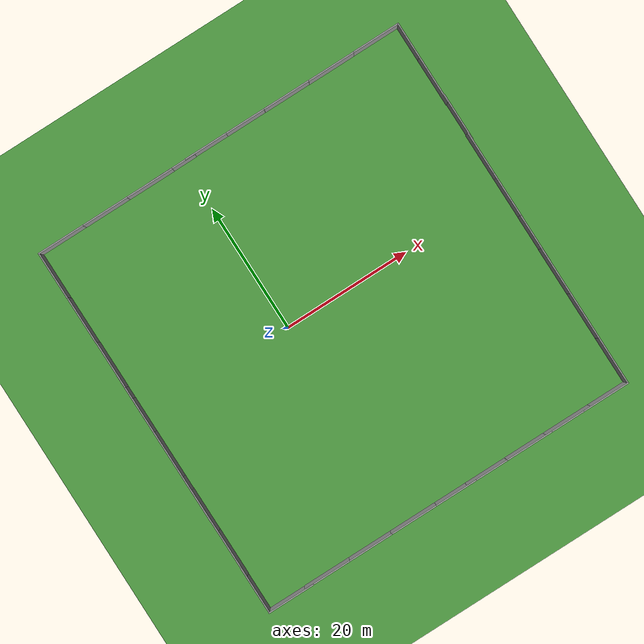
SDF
<sdf version="1.6">
 <world name="default">
  <light name="sun" type="directional">
   <pose>0 0 10 0 -0 0</pose>
   <diffuse>0.8 0.8 0.8 1</diffuse>
   <specular>0.2 0.2 0.2 1</specular>
   <attenuation>
    <range>1000</range>
    <constant>0.9</constant>
    <linear>0.01</linear>
    <quadratic>0.001</quadratic>
   </attenuation>
   <direction>-0.5 0.1 -0.9</direction>
  </light>
  <gravity>0 0 -9.8</gravity>
  <magnetic_field>6e-06 2.3e-05 -4.2e-05</magnetic_field>
  <atmosphere type="adiabatic"/>
  <physics name="default_physics" default="0" type="ode">
   <max_step_size>0.001</max_step_size>
   <real_time_factor>1</real_time_factor>
   <real_time_update_rate>1000</real_time_update_rate>
  </physics>
  <scene><ambient>0.4 0.4 0.4 1</ambient><background>0.7 0.7 0.7 1</background><shadows>1</shadows></scene>
  <spherical_coordinates>
   <surface_model>EARTH_WGS84</surface_model>
   <latitude_deg>0</latitude_deg>
   <longitude_deg>0</longitude_deg>
   <elevation>0</elevation>
   <heading_deg>0</heading_deg>
  </spherical_coordinates>
  <model name="vrc_driving_terrain">
   <static>1</static>
   <link name="grass_plane">
    <collision name="collision">
     <geometry><plane><normal>0 0 1</normal><size>60 60</size></plane></geometry>
     <surface><friction><ode><mu>0.5</mu><mu2>0.5</mu2></ode></friction></surface>
    </collision>
    <visual name="visual_0">
     <cast_shadows>0</cast_shadows>
     <geometry><plane><normal>0 0 1</normal><size>60 60</size></plane></geometry>
     <material>
      <script>
       <uri>model://forest/vrc_driving_terrain/materials/scripts</uri>
       <uri>model://forest/vrc_driving_terrain/materials/textures</uri>
       <name>vrc/grass</name>
      </script>
     </material>
    </visual>
   </link>
   <pose>6.27224 -2.36963 0 0 -0 0</pose>
  </model>
  <model name="grey_wall_clone_10_clone_clone_clone_11_clone_clone_6">
   <static>1</static>
   <link name="link">
    <pose>0 0 1.4 0 -0 0</pose>
    <collision name="collision"><geometry><box><size>7.5 0.2 2.8</size></box></geometry></collision>
    <visual name="visual">
     <cast_shadows>0</cast_shadows>
     <geometry><box><size>7.5 0.2 2.8</size></box></geometry>
     <material>
      <script>
       <uri>model://forest/grey_wall/materials/scripts</uri>
       <uri>model://forest/grey_wall/materials/textures</uri>
       <name>vrc/grey_wall</name>
      </script>
     </material>
    </visual>
   </link>
   <pose>-20.0689 -32.377 0 0 -0 0</pose>
  </model>
  <model name="grey_wall_clone_10_clone_clone_clone_11_clone_clone_7">
   <static>1</static>
   <link name="link">
    <pose>0 0 1.4 0 -0 0</pose>
    <collision name="collision"><geometry><box><size>7.5 0.2 2.8</size></box></geometry></collision>
    <visual name="visual">
     <cast_shadows>0</cast_shadows>
     <geometry><box><size>7.5 0.2 2.8</size></box></geometry>
     <material>
      <script>
       <uri>model://forest/grey_wall/materials/scripts</uri>
       <uri>model://forest/grey_wall/materials/textures</uri>
       <name>vrc/grey_wall</name>
      </script>
     </material>
    </visual>
   </link>
   <pose>-14.0469 -32.337 0 0 -0 0</pose>
  </model>
  <model name="grey_wall_clone_10_clone_clone_clone_11_clone_clone_8">
   <static>1</static>
   <link name="link">
    <pose>0 0 1.4 0 -0 0</pose>
    <collision name="collision"><geometry><box><size>7.5 0.2 2.8</size></box></geometry></collision>
    <visual name="visual">
     <cast_shadows>0</cast_shadows>
     <geometry><box><size>7.5 0.2 2.8</size></box></geometry>
     <material>
      <script>
       <uri>model://forest/grey_wall/materials/scripts</uri>
       <uri>model://forest/grey_wall/materials/textures</uri>
       <name>vrc/grey_wall</name>
      </script>
     </material>
    </visual>
   </link>
   <pose>-6.98097 -32.3403 0 0 -0 0</pose>
  </model>
  <model name="grey_wall_clone_10_clone_clone_clone_11_clone_clone_9">
   <static>1</static>
   <link name="link">
    <pose>0 0 1.4 0 -0 0</pose>
    <collision name="collision"><geometry><box><size>7.5 0.2 2.8</size></box></geometry></collision>
    <visual name="visual">
     <cast_shadows>0</cast_shadows>
     <geometry><box><size>7.5 0.2 2.8</size></box></geometry>
     <material>
      <script>
       <uri>model://forest/grey_wall/materials/scripts</uri>
       <uri>model://forest/grey_wall/materials/textures</uri>
       <name>vrc/grey_wall</name>
      </script>
     </material>
    </visual>
   </link>
   <pose>0.3838 -32.3377 0 0 -0 0</pose>
  </model>
  <model name="grey_wall_clone_10_clone_clone_clone_11_clone_clone_10">
   <static>1</static>
   <link name="link">
    <pose>0 0 1.4 0 -0 0</pose>
    <collision name="collision"><geometry><box><size>7.5 0.2 2.8</size></box></geometry></collision>
    <visual name="visual">
     <cast_shadows>0</cast_shadows>
     <geometry><box><size>7.5 0.2 2.8</size></box></geometry>
     <material>
      <script>
       <uri>model://forest/grey_wall/materials/scripts</uri>
       <uri>model://forest/grey_wall/materials/textures</uri>
       <name>vrc/grey_wall</name>
      </script>
     </material>
    </visual>
   </link>
   <pose>7.10117 -32.3402 0 0 -0 0</pose>
  </model>
  <model name="grey_wall_clone_10_clone_clone_clone_11_clone_clone_11">
   <static>1</static>
   <link name="link">
    <pose>0 0 1.4 0 -0 0</pose>
    <collision name="collision"><geometry><box><size>7.5 0.2 2.8</size></box></geometry></collision>
    <visual name="visual">
     <cast_shadows>0</cast_shadows>
     <geometry><box><size>7.5 0.2 2.8</size></box></geometry>
     <material>
      <script>
       <uri>model://forest/grey_wall/materials/scripts</uri>
       <uri>model://forest/grey_wall/materials/textures</uri>
       <name>vrc/grey_wall</name>
      </script>
     </material>
    </visual>
   </link>
   <pose>19.7031 -32.3238 0 0 -0 0</pose>
  </model>
  <model name="grey_wall_clone_10_clone_clone_clone_11_clone_clone_12">
   <static>1</static>
   <link name="link">
    <pose>0 0 1.4 0 -0 0</pose>
    <collision name="collision"><geometry><box><size>7.5 0.2 2.8</size></box></geometry></collision>
    <visual name="visual">
     <cast_shadows>0</cast_shadows>
     <geometry><box><size>7.5 0.2 2.8</size></box></geometry>
     <material>
      <script>
       <uri>model://forest/grey_wall/materials/scripts</uri>
       <uri>model://forest/grey_wall/materials/textures</uri>
       <name>vrc/grey_wall</name>
      </script>
     </material>
    </visual>
   </link>
   <pose>13.0436 -32.3322 0 0 -0 0</pose>
  </model>
  <model name="grey_wall_clone_10_clone_clone_clone_11_clone_clone_14">
   <static>1</static>
   <link name="link">
    <pose>0 0 1.4 0 -0 0</pose>
    <collision name="collision"><geometry><box><size>7.5 0.2 2.8</size></box></geometry></collision>
    <visual name="visual">
     <cast_shadows>0</cast_shadows>
     <geometry><box><size>7.5 0.2 2.8</size></box></geometry>
     <material>
      <script>
       <uri>model://forest/grey_wall/materials/scripts</uri>
       <uri>model://forest/grey_wall/materials/textures</uri>
       <name>vrc/grey_wall</name>
      </script>
     </material>
    </visual>
   </link>
   <pose>32.4753 -32.3237 0 0 -0 0</pose>
  </model>
  <model name="grey_wall_clone_10_clone_0_clone_4_clone">
   <static>1</static>
   <link name="link">
    <pose>0 0 1.4 0 -0 0</pose>
    <collision name="collision"><geometry><box><size>7.5 0.2 2.8</size></box></geometry></collision>
    <visual name="visual">
     <cast_shadows>0</cast_shadows>
     <geometry><box><size>7.5 0.2 2.8</size></box></geometry>
     <material>
      <script>
       <uri>model://forest/grey_wall/materials/scripts</uri>
       <uri>model://forest/grey_wall/materials/textures</uri>
       <name>vrc/grey_wall</name>
      </script>
     </material>
    </visual>
   </link>
   <pose>36.1029 -28.5226 0 0 0 -1.56932</pose>
  </model>
  <model name="grey_wall_clone_10_clone_0_clone_3_clone">
   <static>1</static>
   <link name="link">
    <pose>0 0 1.4 0 -0 0</pose>
    <collision name="collision"><geometry><box><size>7.5 0.2 2.8</size></box></geometry></collision>
    <visual name="visual">
     <cast_shadows>0</cast_shadows>
     <geometry><box><size>7.5 0.2 2.8</size></box></geometry>
     <material>
      <script>
       <uri>model://forest/grey_wall/materials/scripts</uri>
       <uri>model://forest/grey_wall/materials/textures</uri>
       <name>vrc/grey_wall</name>
      </script>
     </material>
    </visual>
   </link>
   <pose>36.1009 -21.0546 0 0 0 -1.56932</pose>
  </model>
  <model name="grey_wall_clone_10_clone_0_clone_2_clone">
   <static>1</static>
   <link name="link">
    <pose>0 0 1.4 0 -0 0</pose>
    <collision name="collision"><geometry><box><size>7.5 0.2 2.8</size></box></geometry></collision>
    <visual name="visual">
     <cast_shadows>0</cast_shadows>
     <geometry><box><size>7.5 0.2 2.8</size></box></geometry>
     <material>
      <script>
       <uri>model://forest/grey_wall/materials/scripts</uri>
       <uri>model://forest/grey_wall/materials/textures</uri>
       <name>vrc/grey_wall</name>
      </script>
     </material>
    </visual>
   </link>
   <pose>36.0909 -13.5753 0 0 0 -1.56932</pose>
  </model>
  <model name="grey_wall_clone_10_clone_0_clone_1_clone">
   <static>1</static>
   <link name="link">
    <pose>0 0 1.4 0 -0 0</pose>
    <collision name="collision"><geometry><box><size>7.5 0.2 2.8</size></box></geometry></collision>
    <visual name="visual">
     <cast_shadows>0</cast_shadows>
     <geometry><box><size>7.5 0.2 2.8</size></box></geometry>
     <material>
      <script>
       <uri>model://forest/grey_wall/materials/scripts</uri>
       <uri>model://forest/grey_wall/materials/textures</uri>
       <name>vrc/grey_wall</name>
      </script>
     </material>
    </visual>
   </link>
   <pose>36.1079 -8.10384 0 0 0 -1.56932</pose>
  </model>
  <model name="grey_wall_clone_10_clone_0_clone_0_clone">
   <static>1</static>
   <link name="link">
    <pose>0 0 1.4 0 -0 0</pose>
    <collision name="collision"><geometry><box><size>7.5 0.2 2.8</size></box></geometry></collision>
    <visual name="visual">
     <cast_shadows>0</cast_shadows>
     <geometry><box><size>7.5 0.2 2.8</size></box></geometry>
     <material>
      <script>
       <uri>model://forest/grey_wall/materials/scripts</uri>
       <uri>model://forest/grey_wall/materials/textures</uri>
       <name>vrc/grey_wall</name>
      </script>
     </material>
    </visual>
   </link>
   <pose>36.1171 -1.08216 0 0 0 -1.56932</pose>
  </model>
  <model name="grey_wall_clone_10_clone_0_clone_clone">
   <static>1</static>
   <link name="link">
    <pose>0 0 1.4 0 -0 0</pose>
    <collision name="collision"><geometry><box><size>7.5 0.2 2.8</size></box></geometry></collision>
    <visual name="visual">
     <cast_shadows>0</cast_shadows>
     <geometry><box><size>7.5 0.2 2.8</size></box></geometry>
     <material>
      <script>
       <uri>model://forest/grey_wall/materials/scripts</uri>
       <uri>model://forest/grey_wall/materials/textures</uri>
       <name>vrc/grey_wall</name>
      </script>
     </material>
    </visual>
   </link>
   <pose>36.1055 5.65363 0 0 0 -1.56932</pose>
  </model>
  <model name="grey_wall_clone_10_clone_0_clone_12">
   <static>1</static>
   <link name="link">
    <pose>0 0 1.4 0 -0 0</pose>
    <collision name="collision"><geometry><box><size>7.5 0.2 2.8</size></box></geometry></collision>
    <visual name="visual">
     <cast_shadows>0</cast_shadows>
     <geometry><box><size>7.5 0.2 2.8</size></box></geometry>
     <material>
      <script>
       <uri>model://forest/grey_wall/materials/scripts</uri>
       <uri>model://forest/grey_wall/materials/textures</uri>
       <name>vrc/grey_wall</name>
      </script>
     </material>
    </visual>
   </link>
   <pose>36.1794 12.0088 0 0 0 -1.56932</pose>
  </model>
  <model name="grey_wall_clone_10_clone_0_clone_13">
   <static>1</static>
   <link name="link">
    <pose>0 0 1.4 0 -0 0</pose>
    <collision name="collision"><geometry><box><size>7.5 0.2 2.8</size></box></geometry></collision>
    <visual name="visual">
     <cast_shadows>0</cast_shadows>
     <geometry><box><size>7.5 0.2 2.8</size></box></geometry>
     <material>
      <script>
       <uri>model://forest/grey_wall/materials/scripts</uri>
       <uri>model://forest/grey_wall/materials/textures</uri>
       <name>vrc/grey_wall</name>
      </script>
     </material>
    </visual>
   </link>
   <pose>36.0952 23.8909 0 0 0 -1.56932</pose>
  </model>
  <model name="grey_wall_clone_10_clone_clone_6">
   <static>1</static>
   <link name="link">
    <pose>0 0 1.4 0 -0 0</pose>
    <collision name="collision"><geometry><box><size>7.5 0.2 2.8</size></box></geometry></collision>
    <visual name="visual">
     <cast_shadows>0</cast_shadows>
     <geometry><box><size>7.5 0.2 2.8</size></box></geometry>
     <material>
      <script>
       <uri>model://forest/grey_wall/materials/scripts</uri>
       <uri>model://forest/grey_wall/materials/textures</uri>
       <name>vrc/grey_wall</name>
      </script>
     </material>
    </visual>
   </link>
   <pose>32.3871 27.6022 0 0 -0 0</pose>
  </model>
  <model name="grey_wall_clone_10_clone_clone_7">
   <static>1</static>
   <link name="link">
    <pose>0 0 1.4 0 -0 0</pose>
    <collision name="collision"><geometry><box><size>7.5 0.2 2.8</size></box></geometry></collision>
    <visual name="visual">
     <cast_shadows>0</cast_shadows>
     <geometry><box><size>7.5 0.2 2.8</size></box></geometry>
     <material>
      <script>
       <uri>model://forest/grey_wall/materials/scripts</uri>
       <uri>model://forest/grey_wall/materials/textures</uri>
       <name>vrc/grey_wall</name>
      </script>
     </material>
    </visual>
   </link>
   <pose>24.9042 27.5875 0 0 -0 0</pose>
  </model>
  <model name="grey_wall_clone_10_clone_clone_8">
   <static>1</static>
   <link name="link">
    <pose>0 0 1.4 0 -0 0</pose>
    <collision name="collision"><geometry><box><size>7.5 0.2 2.8</size></box></geometry></collision>
    <visual name="visual">
     <cast_shadows>0</cast_shadows>
     <geometry><box><size>7.5 0.2 2.8</size></box></geometry>
     <material>
      <script>
       <uri>model://forest/grey_wall/materials/scripts</uri>
       <uri>model://forest/grey_wall/materials/textures</uri>
       <name>vrc/grey_wall</name>
      </script>
     </material>
    </visual>
   </link>
   <pose>17.5062 27.6094 0 0 -0 0</pose>
  </model>
  <model name="grey_wall_clone_10_clone_clone_9">
   <static>1</static>
   <link name="link">
    <pose>0 0 1.4 0 -0 0</pose>
    <collision name="collision"><geometry><box><size>7.5 0.2 2.8</size></box></geometry></collision>
    <visual name="visual">
     <cast_shadows>0</cast_shadows>
     <geometry><box><size>7.5 0.2 2.8</size></box></geometry>
     <material>
      <script>
       <uri>model://forest/grey_wall/materials/scripts</uri>
       <uri>model://forest/grey_wall/materials/textures</uri>
       <name>vrc/grey_wall</name>
      </script>
     </material>
    </visual>
   </link>
   <pose>11.1913 27.6263 0 0 -0 0</pose>
  </model>
  <model name="grey_wall_clone_10_clone_clone_10">
   <static>1</static>
   <link name="link">
    <pose>0 0 1.4 0 -0 0</pose>
    <collision name="collision"><geometry><box><size>7.5 0.2 2.8</size></box></geometry></collision>
    <visual name="visual">
     <cast_shadows>0</cast_shadows>
     <geometry><box><size>7.5 0.2 2.8</size></box></geometry>
     <material>
      <script>
       <uri>model://forest/grey_wall/materials/scripts</uri>
       <uri>model://forest/grey_wall/materials/textures</uri>
       <name>vrc/grey_wall</name>
      </script>
     </material>
    </visual>
   </link>
   <pose>4.39213 27.6355 0 0 -0 0</pose>
  </model>
  <model name="grey_wall_clone_10_clone_clone_11">
   <static>1</static>
   <link name="link">
    <pose>0 0 1.4 0 -0 0</pose>
    <collision name="collision"><geometry><box><size>7.5 0.2 2.8</size></box></geometry></collision>
    <visual name="visual">
     <cast_shadows>0</cast_shadows>
     <geometry><box><size>7.5 0.2 2.8</size></box></geometry>
     <material>
      <script>
       <uri>model://forest/grey_wall/materials/scripts</uri>
       <uri>model://forest/grey_wall/materials/textures</uri>
       <name>vrc/grey_wall</name>
      </script>
     </material>
    </visual>
   </link>
   <pose>-5.36662 27.5533 0 0 -0 0</pose>
  </model>
  <model name="grey_wall_clone_10_clone_clone_12">
   <static>1</static>
   <link name="link">
    <pose>0 0 1.4 0 -0 0</pose>
    <collision name="collision"><geometry><box><size>7.5 0.2 2.8</size></box></geometry></collision>
    <visual name="visual">
     <cast_shadows>0</cast_shadows>
     <geometry><box><size>7.5 0.2 2.8</size></box></geometry>
     <material>
      <script>
       <uri>model://forest/grey_wall/materials/scripts</uri>
       <uri>model://forest/grey_wall/materials/textures</uri>
       <name>vrc/grey_wall</name>
      </script>
     </material>
    </visual>
   </link>
   <pose>-12.7191 27.5554 0 0 -0 0</pose>
  </model>
  <model name="grey_wall_clone_10_clone_clone_14">
   <static>1</static>
   <link name="link">
    <pose>0 0 1.4 0 -0 0</pose>
    <collision name="collision"><geometry><box><size>7.5 0.2 2.8</size></box></geometry></collision>
    <visual name="visual">
     <cast_shadows>0</cast_shadows>
     <geometry><box><size>7.5 0.2 2.8</size></box></geometry>
     <material>
      <script>
       <uri>model://forest/grey_wall/materials/scripts</uri>
       <uri>model://forest/grey_wall/materials/textures</uri>
       <name>vrc/grey_wall</name>
      </script>
     </material>
    </visual>
   </link>
   <pose>-20.152 27.5651 0 0 -0 0</pose>
  </model>
  <model name="grey_wall_clone_10_clone_0_clone_5_clone_12_clone_8">
   <static>1</static>
   <link name="link">
    <pose>0 0 1.4 0 -0 0</pose>
    <collision name="collision"><geometry><box><size>7.5 0.2 2.8</size></box></geometry></collision>
    <visual name="visual">
     <cast_shadows>0</cast_shadows>
     <geometry><box><size>7.5 0.2 2.8</size></box></geometry>
     <material>
      <script>
       <uri>model://forest/grey_wall/materials/scripts</uri>
       <uri>model://forest/grey_wall/materials/textures</uri>
       <name>vrc/grey_wall</name>
      </script>
     </material>
    </visual>
   </link>
   <pose>-23.8162 23.8834 0 0 0 -1.56932</pose>
  </model>
  <model name="grey_wall_clone_10_clone_0_clone_5_clone_12_clone_9">
   <static>1</static>
   <link name="link">
    <pose>0 0 1.4 0 -0 0</pose>
    <collision name="collision"><geometry><box><size>7.5 0.2 2.8</size></box></geometry></collision>
    <visual name="visual">
     <cast_shadows>0</cast_shadows>
     <geometry><box><size>7.5 0.2 2.8</size></box></geometry>
     <material>
      <script>
       <uri>model://forest/grey_wall/materials/scripts</uri>
       <uri>model://forest/grey_wall/materials/textures</uri>
       <name>vrc/grey_wall</name>
      </script>
     </material>
    </visual>
   </link>
   <pose>-23.7899 16.4201 0 0 0 -1.56932</pose>
  </model>
  <model name="grey_wall_clone_10_clone_0_clone_5_clone_12_clone_10">
   <static>1</static>
   <link name="link">
    <pose>0 0 1.4 0 -0 0</pose>
    <collision name="collision"><geometry><box><size>7.5 0.2 2.8</size></box></geometry></collision>
    <visual name="visual">
     <cast_shadows>0</cast_shadows>
     <geometry><box><size>7.5 0.2 2.8</size></box></geometry>
     <material>
      <script>
       <uri>model://forest/grey_wall/materials/scripts</uri>
       <uri>model://forest/grey_wall/materials/textures</uri>
       <name>vrc/grey_wall</name>
      </script>
     </material>
    </visual>
   </link>
   <pose>-23.7486 8.93927 0 0 0 -1.56932</pose>
  </model>
  <model name="grey_wall_clone_10_clone_0_clone_5_clone_12_clone_11">
   <static>1</static>
   <link name="link">
    <pose>0 0 1.4 0 -0 0</pose>
    <collision name="collision"><geometry><box><size>7.5 0.2 2.8</size></box></geometry></collision>
    <visual name="visual">
     <cast_shadows>0</cast_shadows>
     <geometry><box><size>7.5 0.2 2.8</size></box></geometry>
     <material>
      <script>
       <uri>model://forest/grey_wall/materials/scripts</uri>
       <uri>model://forest/grey_wall/materials/textures</uri>
       <name>vrc/grey_wall</name>
      </script>
     </material>
    </visual>
   </link>
   <pose>-23.7488 -0.411981 0 0 0 -1.56932</pose>
  </model>
  <model name="grey_wall_clone_10_clone_0_clone_5_clone_12_clone_12">
   <static>1</static>
   <link name="link">
    <pose>0 0 1.4 0 -0 0</pose>
    <collision name="collision"><geometry><box><size>7.5 0.2 2.8</size></box></geometry></collision>
    <visual name="visual">
     <cast_shadows>0</cast_shadows>
     <geometry><box><size>7.5 0.2 2.8</size></box></geometry>
     <material>
      <script>
       <uri>model://forest/grey_wall/materials/scripts</uri>
       <uri>model://forest/grey_wall/materials/textures</uri>
       <name>vrc/grey_wall</name>
      </script>
     </material>
    </visual>
   </link>
   <pose>-23.7368 -6.04779 0 0 0 -1.56932</pose>
  </model>
  <model name="grey_wall_clone_10_clone_0_clone_5_clone_12_clone_13">
   <static>1</static>
   <link name="link">
    <pose>0 0 1.4 0 -0 0</pose>
    <collision name="collision"><geometry><box><size>7.5 0.2 2.8</size></box></geometry></collision>
    <visual name="visual">
     <cast_shadows>0</cast_shadows>
     <geometry><box><size>7.5 0.2 2.8</size></box></geometry>
     <material>
      <script>
       <uri>model://forest/grey_wall/materials/scripts</uri>
       <uri>model://forest/grey_wall/materials/textures</uri>
       <name>vrc/grey_wall</name>
      </script>
     </material>
    </visual>
   </link>
   <pose>-23.7298 -13.5026 0 0 0 -1.56932</pose>
  </model>
  <model name="grey_wall_clone_10_clone_0_clone_5_clone_12_clone_14">
   <static>1</static>
   <link name="link">
    <pose>0 0 1.4 0 -0 0</pose>
    <collision name="collision"><geometry><box><size>7.5 0.2 2.8</size></box></geometry></collision>
    <visual name="visual">
     <cast_shadows>0</cast_shadows>
     <geometry><box><size>7.5 0.2 2.8</size></box></geometry>
     <material>
      <script>
       <uri>model://forest/grey_wall/materials/scripts</uri>
       <uri>model://forest/grey_wall/materials/textures</uri>
       <name>vrc/grey_wall</name>
      </script>
     </material>
    </visual>
   </link>
   <pose>-23.7024 -28.5538 0 0 0 -1.56932</pose>
  </model>
  <model name="grey_wall_clone_10_clone_0_clone_5_clone_12_clone_15">
   <static>1</static>
   <link name="link">
    <pose>0 0 1.4 0 -0 0</pose>
    <collision name="collision"><geometry><box><size>7.5 0.2 2.8</size></box></geometry></collision>
    <visual name="visual">
     <cast_shadows>0</cast_shadows>
     <geometry><box><size>7.5 0.2 2.8</size></box></geometry>
     <material>
      <script>
       <uri>model://forest/grey_wall/materials/scripts</uri>
       <uri>model://forest/grey_wall/materials/textures</uri>
       <name>vrc/grey_wall</name>
      </script>
     </material>
    </visual>
   </link>
   <pose>-23.6973 -15.7824 0 0 0 -1.56932</pose>
  </model>
  <audio><device>default</device></audio>
  <model name="grey_wall_clone_10_clone_clone_11_clone">
   <static>1</static>
   <link name="link">
    <pose>0 0 1.4 0 -0 0</pose>
    <collision name="collision"><geometry><box><size>7.5 0.2 2.8</size></box></geometry></collision>
    <visual name="visual">
     <cast_shadows>0</cast_shadows>
     <geometry><box><size>7.5 0.2 2.8</size></box></geometry>
     <material>
      <script>
       <uri>model://forest/grey_wall/materials/scripts</uri>
       <uri>model://forest/grey_wall/materials/textures</uri>
       <name>vrc/grey_wall</name>
      </script>
     </material>
    </visual>
   </link>
   <pose>-1.59891 27.5825 0 0 -0 0</pose>
  </model>
  <model name="grey_wall_clone_10_clone_0_clone_13_clone">
   <static>1</static>
   <link name="link">
    <pose>0 0 1.4 0 -0 0</pose>
    <collision name="collision"><geometry><box><size>7.5 0.2 2.8</size></box></geometry></collision>
    <visual name="visual">
     <cast_shadows>0</cast_shadows>
     <geometry><box><size>7.5 0.2 2.8</size></box></geometry>
     <material>
      <script>
       <uri>model://forest/grey_wall/materials/scripts</uri>
       <uri>model://forest/grey_wall/materials/textures</uri>
       <name>vrc/grey_wall</name>
      </script>
     </material>
    </visual>
   </link>
   <pose>36.0988 18.3028 0 0 0 -1.56932</pose>
  </model>
  <model name="grey_wall_clone_10_clone_clone_clone_11_clone_clone_12_clone">
   <static>1</static>
   <link name="link">
    <pose>0 0 1.4 0 -0 0</pose>
    <collision name="collision"><geometry><box><size>7.5 0.2 2.8</size></box></geometry></collision>
    <visual name="visual">
     <cast_shadows>0</cast_shadows>
     <geometry><box><size>7.5 0.2 2.8</size></box></geometry>
     <material>
      <script>
       <uri>model://forest/grey_wall/materials/scripts</uri>
       <uri>model://forest/grey_wall/materials/textures</uri>
       <name>vrc/grey_wall</name>
      </script>
     </material>
    </visual>
   </link>
   <pose>26.1967 -32.3206 0 0 -0 0</pose>
  </model>
  <model name="grey_wall_clone_10_clone_0_clone_5_clone_12_clone_14_clone">
   <static>1</static>
   <link name="link">
    <pose>0 0 1.4 0 -0 0</pose>
    <collision name="collision"><geometry><box><size>7.5 0.2 2.8</size></box></geometry></collision>
    <visual name="visual">
     <cast_shadows>0</cast_shadows>
     <geometry><box><size>7.5 0.2 2.8</size></box></geometry>
     <material>
      <script>
       <uri>model://forest/grey_wall/materials/scripts</uri>
       <uri>model://forest/grey_wall/materials/textures</uri>
       <name>vrc/grey_wall</name>
      </script>
     </material>
    </visual>
   </link>
   <pose>-23.6719 -22.6472 0 0 0 -1.56932</pose>
  </model>
  <model name="grey_wall_clone_10_clone_0_clone_5_clone_12_clone_11_clone">
   <static>1</static>
   <link name="link">
    <pose>0 0 1.4 0 -0 0</pose>
    <collision name="collision"><geometry><box><size>7.5 0.2 2.8</size></box></geometry></collision>
    <visual name="visual">
     <cast_shadows>0</cast_shadows>
     <geometry><box><size>7.5 0.2 2.8</size></box></geometry>
     <material>
      <script>
       <uri>model://forest/grey_wall/materials/scripts</uri>
       <uri>model://forest/grey_wall/materials/textures</uri>
       <name>vrc/grey_wall</name>
      </script>
     </material>
    </visual>
   </link>
   <pose>-23.7619 3.61269 0 0 0 -1.56932</pose>
  </model>
 </world>
</sdf>
